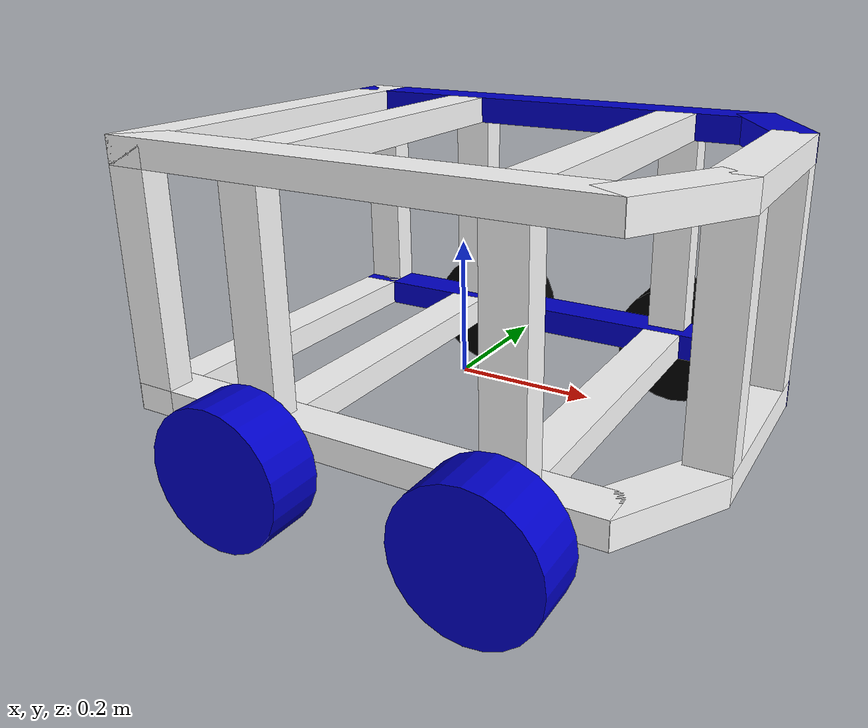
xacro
<?xml version="1.0"?>
<robot xmlns:xacro="http://www.ros.org/wiki/xacro"  name="GUELADAN">

    <xacro:include filename="chassis.urdf.xacro" />
    <xacro:include filename="chassis_top.urdf.xacro" />
    <xacro:include filename="chassis_bar.urdf.xacro" />
	<gazebo>
		<plugin name="gazebo_ros_control" filename="libgazebo_ros_control.so">
		  <robotNamespace>/</robotNamespace>
		</plugin>
	</gazebo>

</robot>

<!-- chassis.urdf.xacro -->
<robot xmlns:xacro="http://www.ros.org/wiki/xacro">

<xacro:include filename="inertial_macros.xacro"/>

  <material name="blue">
    <color rgba="0 0 0.8 1"/>
  </material>
  <material name="black">
    <color rgba="0 0 0 1"/>
  </material>
  <material name="white">
    <color rgba="1 1 1 1"/>
  </material>

<link name="base_link"></link>

<joint name="base_join" type="fixed">
    <parent link="base_link"/>
    <child link="chassis_link_back"/>
    <origin rpy="0 0 0" xyz="-0.325 0 0"/>
</joint>

  <link name="chassis_link_back">
    <visual>
      <geometry>
        <box size="0.06 0.6 0.04"/>
      </geometry>
      <origin rpy="0 0 0" xyz="0 0 0"/>
      <material name="white"/>
    </visual>
    <collision>
        <geometry>
            <box size="0.06 0.6 0.04"/>
        </geometry>
        <origin rpy="0 0 0" xyz="0 0 0"/>
    </collision>
    <xacro:inertial_box mass="1.8" x="0.06" y="0.6" z="0.04">
      <origin rpy="0 0 0" xyz="0 0 0"/>
    </xacro:inertial_box>
  </link>

  <joint name="base_link_right_joint" type="fixed">
    <parent link="base_link"/>
    <child link="chassis_link_right"/>
    <origin rpy="0 0 0" xyz="0 -0.27 0"/>
  </joint>

  <joint name="base_link_left_joint" type="fixed">
    <parent link="base_link"/>
    <child link="chassis_link_left"/>
    <origin rpy="0 0 0" xyz="0 0.27 0"/>
  </joint>

  <link name="chassis_link_right">
    <visual>
      <geometry>
        <box size="0.71 0.06 0.04"/>
      </geometry>
      <origin rpy="0 0 0" xyz="0 0 0"/>
      <material name="white"/>
    </visual>

    <collision>
      <geometry>
        <box size="0.71 0.06 0.04"/>
      </geometry>
      <origin rpy="0 0 0" xyz="0 0 0"/>
      <material name="white"/>
    </collision>

    <xacro:inertial_box mass="2.13" x="0.71" y="0.06" z="0.04">
      <origin rpy="0 0 0" xyz="0 0 0"/>
    </xacro:inertial_box>
  </link>

  <link name="chassis_link_left">
    <visual>
      <geometry>
        <box size="0.71 0.06 0.04"/>
      </geometry>
      <origin rpy="0 0 0" xyz="0 0 0"/>
      <material name="blue"/>
    </visual>

    <collision>
      <geometry>
        <box size="0.71 0.06 0.04"/>
      </geometry>
      <origin rpy="0 0 0" xyz="0 0 0"/>
      <material name="blue"/>
    </collision>

    <xacro:inertial_box mass="2.13" x="0.71" y="0.06" z="0.4">
      <origin rpy="0 0 0" xyz="0 0 0"/>
    </xacro:inertial_box>
  </link>

  <joint name="base_link_right_oblic_joint" type="fixed">
    <parent link="base_link"/>
    <child link="chassis_link_right_oblic"/>
    <origin rpy="0 0 -2.11" xyz="0.375 -0.21 0"/>
  </joint>

  <joint name="base_link_left_oblic_joint" type="fixed">
    <parent link="base_link"/>
    <child link="chassis_link_left_oblic"/>
    <origin rpy="0 0 2.11" xyz="0.375 0.21 0"/>
  </joint>

  <joint name="base_link_front_joint" type="fixed">
    <parent link="base_link"/>
    <child link="chassis_link_front"/>
    <origin rpy="0 0 0" xyz="0.415 0 0"/>
  </joint>

  <joint name="chassis_link_2_joint" type="fixed">
    <parent link="base_link"/>
    <child link="chassis_link_2"/>
    <origin rpy="0 0 0" xyz="0.2254 0 0"/>
  </joint>

  <joint name="chassis_link_1_joint" type="fixed">
    <parent link="base_link"/>
    <child link="chassis_link_1"/>
    <origin rpy="0 0 0" xyz="-0.1346 0 0"/>
  </joint>

  <link name="chassis_link_left_oblic">
    <visual>
      <geometry>
        <box size="0.175 0.06 0.04"/>
      </geometry>
      <origin rpy="0 0 0" xyz="0 0 0"/>
      <material name="blue"/>
    </visual>

    <collision>
      <geometry>
        <box size="0.175 0.06 0.04"/>
      </geometry>
      <origin rpy="0 0 0" xyz="0 0 0"/>
      <material name="blue"/>
    </collision>

    <xacro:inertial_box mass="0.525" x="0.175" y="0.06" z="0.04">
      <origin rpy="0 0 0" xyz="0 0 0"/>
    </xacro:inertial_box>
  </link>

  <link name="chassis_link_right_oblic">
    <visual>
      <geometry>
        <box size="0.175 0.06 0.04"/>
      </geometry>
      <origin rpy="0 0 0" xyz="0 0 0"/>
      <material name="white"/>
    </visual>

    <collision>
      <geometry>
        <box size="0.175 0.06 0.04"/>
      </geometry>
      <origin rpy="0 0 0" xyz="0 0 0"/>
      <material name="white"/>
    </collision>

    <xacro:inertial_box mass="0.525" x="0.175" y="0.06" z="0.4">
      <origin rpy="0 0 0" xyz="0 0 0"/>
    </xacro:inertial_box>
  </link>

  <link name="chassis_link_front">
    <visual>
      <geometry>
        <box size="0.06 0.3 0.04"/>
      </geometry>
      <origin rpy="0 0 0" xyz="0 0 0"/>
      <material name="white"/>
    </visual>

    <collision>
      <geometry>
        <box size="0.06 0.3 0.04"/>
      </geometry>
      <origin rpy="0 0 0" xyz="0 0 0"/>
      <material name="white"/>
    </collision>

    <xacro:inertial_box mass="0.9" x="0.06" y="0.3" z="0.04">
      <origin rpy="0 0 0" xyz="0 0 0"/>
    </xacro:inertial_box>
  </link>

  <link name="chassis_link_1">
    <visual>
      <geometry>
        <box size="0.06 0.48 0.04"/>
      </geometry>
      <origin rpy="0 0 0" xyz="0 0 0"/>
      <material name="white"/>
    </visual>

    <collision>
      <geometry>
        <box size="0.06 0.48 0.04"/>
      </geometry>
      <origin rpy="0 0 0" xyz="0 0 0"/>
      <material name="white"/>
    </collision>

     <xacro:inertial_box mass="0.9" x="0.06" y="0.3" z="0.04">
      <origin rpy="0 0 0" xyz="0 0 0"/>
    </xacro:inertial_box>
  </link>

  <link name="chassis_link_2">
    <visual>
      <geometry>
        <box size="0.06 0.48 0.04"/>
      </geometry>
      <origin rpy="0 0 0" xyz="0 0 0"/>
      <material name="white"/>
    </visual>

    <collision>
      <geometry>
        <box size="0.06 0.48 0.04"/>
      </geometry>
      <origin rpy="0 0 0" xyz="0 0 0"/>
      <material name="white"/>
    </collision>

     <xacro:inertial_box mass="0.9" x="0.06" y="0.3" z="0.04">
      <origin rpy="0 0 0" xyz="0 0 0"/>
    </xacro:inertial_box>
  </link>

      <link name="back_left_wheel">
        <visual>
            <geometry>
                <cylinder length="0.08" radius="0.1"/>
            </geometry>
            <origin rpy="0 0 0" xyz="0 0 0"/>
            <material name="black"/>
        </visual>

        <collision>
            <geometry>
                <cylinder length="0.08" radius="0.1"/>
            </geometry>
            <origin rpy="0 0 0" xyz="0 0 0"/>
            <material name="black"/>
        </collision>

        <xacro:inertial_cylinder mass="0.5" length="0.08" radius="0.01">
            <origin xyz="0 0 0" rpy="0 0 0"/>
        </xacro:inertial_cylinder>
    </link>

    <link name="front_left_wheel">
        <visual>
            <geometry>
                <cylinder length="0.08" radius="0.1"/>
            </geometry>
            <origin rpy="0 0 0" xyz="0 0 0"/>
            <material name="black"/>
        </visual>
        <collision>
            <geometry>
                <cylinder length="0.08" radius="0.1"/>
            </geometry>
            <origin rpy="0 0 0" xyz="0 0 0"/>
            <material name="black"/>
        </collision>
        <xacro:inertial_cylinder mass="0.5" length="0.08" radius="0.01">
            <origin xyz="0 0 0" rpy="0 0 0"/>
        </xacro:inertial_cylinder>
    </link>

    <link name="back_right_wheel">
        <visual>
            <geometry>
                <cylinder length="0.08" radius="0.1"/>
            </geometry>
            <origin rpy="0 0 0" xyz="0 0 0"/>
            <material name="blue"/>
        </visual>
        <collision>
            <geometry>
                <cylinder length="0.08" radius="0.1"/>
            </geometry>
            <origin rpy="0 0 0" xyz="0 0 0"/>
            <material name="blue"/>
        </collision>
        <xacro:inertial_cylinder mass="0.5" length="0.08" radius="0.01">
            <origin xyz="0 0 0" rpy="0 0 0"/>
        </xacro:inertial_cylinder>
    </link>

    <link name="front_right_wheel">
        <visual>
            <geometry>
            <cylinder length="0.08" radius="0.1"/>
            </geometry>
            <origin rpy="0 0 0" xyz="0 0 0"/>
            <material name="blue"/>
        </visual>
        <collision>
            <geometry>
            <cylinder length="0.08" radius="0.1"/>
            </geometry>
            <origin rpy="0 0 0" xyz="0 0 0"/>
            <material name="blue"/>
        </collision>
        <xacro:inertial_cylinder mass="0.5" length="0.08" radius="0.01">
            <origin xyz="0 0 0" rpy="0 0 0"/>
        </xacro:inertial_cylinder>
    </link>

    <joint name="front_right_wheel_joint" type="continuous">
        <parent link="base_link"/>
        <child link="front_right_wheel"/>
        <origin rpy="1.57 0 0" xyz="0.2254 -0.35 -0.03"/>
        <axis xyz="0 0 -1"/>
    </joint>

    <transmission name="front_right_wheel_trans">
      <type>transmission_interface/SimpleTransmission</type>
      <actuator name="front_right_wheel_motor">
        <mechanicalReduction>1</mechanicalReduction>
      </actuator>
      <joint name="front_right_wheel_joint">
        <hardwareInterface>hardware_interface/VelocityJointInterface</hardwareInterface>
      </joint>
    </transmission>

    <joint name="back_right_wheel_joint" type="continuous">
        <parent link="base_link"/>
        <child link="back_right_wheel"/>
        <origin rpy="1.57 0 0" xyz="-0.1346 -0.35 -0.03"/>
        <axis xyz="0 0 -1"/>
    </joint>
    <transmission name="back_right_wheel_trans">
      <type>transmission_interface/SimpleTransmission</type>
      <actuator name="back_right_wheel_motor">
        <mechanicalReduction>1</mechanicalReduction>
      </actuator>
      <joint name="back_right_wheel_joint">
        <hardwareInterface>hardware_interface/VelocityJointInterface</hardwareInterface>
      </joint>
    </transmission>

    <joint name="front_left_wheel_joint" type="continuous">
        <parent link="base_link"/>
        <child link="front_left_wheel"/>
        <origin rpy="-1.57 0 0" xyz="0.2254 0.35 -0.03"/>
        <axis xyz="0 0 1"/>
    </joint>
    <transmission name="front_left_wheel_trans">
      <type>transmission_interface/SimpleTransmission</type>
      <actuator name="front_left_wheel_motor">
        <mechanicalReduction>1</mechanicalReduction>
      </actuator>
      <joint name="front_left_wheel_joint">
        <hardwareInterface>hardware_interface/VelocityJointInterface</hardwareInterface>
      </joint>
    </transmission>

    <joint name="back_left_wheel_joint" type="continuous">
        <parent link="base_link"/>
        <child link="back_left_wheel"/>
        <origin rpy="-1.57 0 0" xyz="-0.1346 0.35 -0.03"/>
        <axis xyz="0 0 1"/>
    </joint>
    <transmission name="back_left_wheel_trans">
      <type>transmission_interface/SimpleTransmission</type>
      <actuator name="back_left_wheel_motor">
        <mechanicalReduction>1</mechanicalReduction>
      </actuator>
      <joint name="back_left_wheel_joint">
        <hardwareInterface>hardware_interface/VelocityJointInterface</hardwareInterface>
      </joint>
    </transmission>

  <gazebo reference="back_right_wheel">
      <mu1 value="200.0"/>
      <mu2 value="100.0"/>
      <kp value="10000000.0" />
      <kd value="1.0" />
      <material>Gazebo/Grey</material>
  </gazebo>
  <gazebo reference="front_right_wheel">
      <mu1 value="200.0"/>
      <mu2 value="100.0"/>
      <kp value="10000000.0" />
      <kd value="1.0" />
      <material>Gazebo/Grey</material>
  </gazebo>
  <gazebo reference="front_left_wheel">
      <mu1 value="200.0"/>
      <mu2 value="100.0"/>
      <kp value="10000000.0" />
      <kd value="1.0" />
      <material>Gazebo/Grey</material>
  </gazebo>
  <gazebo reference="back_left_wheel">
      <mu1 value="200.0"/>
      <mu2 value="100.0"/>
      <kp value="10000000.0" />
      <kd value="1.0" />
      <material>Gazebo/Grey</material>
  </gazebo>

</robot>

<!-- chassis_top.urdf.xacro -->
<robot xmlns:xacro="http://www.ros.org/wiki/xacro">

<xacro:include filename="inertial_macros.xacro"/>

<xacro:property name="robot_height" value="0.35" />

<joint name="base_top_join" type="fixed">
    <parent link="base_link"/>
    <child link="base_link_top"/>
    <origin rpy="0 0 0" xyz="0 0 ${robot_height}"/>
</joint>
<link name="base_link_top"></link>

<joint name="base_chassis_top_join" type="fixed">
    <parent link="base_link_top"/>
    <child link="chassis_top_link_back"/>
    <origin rpy="0 0 0" xyz="-0.325 0 0"/>
</joint>

  <link name="chassis_top_link_back">
    <visual>
      <geometry>
        <box size="0.06 0.6 0.04"/>
      </geometry>
      <origin rpy="0 0 0" xyz="0 0 0"/>
      <material name="white"/>
    </visual>
    <collision>
        <geometry>
            <box size="0.06 0.6 0.04"/>
        </geometry>
        <origin rpy="0 0 0" xyz="0 0 0"/>
    </collision>
    <xacro:inertial_box mass="1.8" x="0.06" y="0.6" z="0.04">
      <origin rpy="0 0 0" xyz="0 0 0"/>
    </xacro:inertial_box>
  </link>

  <joint name="base_link_top_right_joint" type="fixed">
    <parent link="base_link_top"/>
    <child link="chassis_top_link_right"/>
    <origin rpy="0 0 0" xyz="0 -0.27 0"/>
  </joint>

  <joint name="base_link_top_left_joint" type="fixed">
    <parent link="base_link_top"/>
    <child link="chassis_top_link_left"/>
    <origin rpy="0 0 0" xyz="0 0.27 0"/>
  </joint>

  <link name="chassis_top_link_right">
    <visual>
      <geometry>
        <box size="0.71 0.06 0.04"/>
      </geometry>
      <origin rpy="0 0 0" xyz="0 0 0"/>
      <material name="white"/>
    </visual>

    <collision>
      <geometry>
        <box size="0.71 0.06 0.04"/>
      </geometry>
      <origin rpy="0 0 0" xyz="0 0 0"/>
      <material name="white"/>
    </collision>

    <xacro:inertial_box mass="2.13" x="0.71" y="0.06" z="0.04">
      <origin rpy="0 0 0" xyz="0 0 0"/>
    </xacro:inertial_box>
  </link>

  <link name="chassis_top_link_left">
    <visual>
      <geometry>
        <box size="0.71 0.06 0.04"/>
      </geometry>
      <origin rpy="0 0 0" xyz="0 0 0"/>
      <material name="blue"/>
    </visual>

    <collision>
      <geometry>
        <box size="0.71 0.06 0.04"/>
      </geometry>
      <origin rpy="0 0 0" xyz="0 0 0"/>
      <material name="blue"/>
    </collision>

    <xacro:inertial_box mass="2.13" x="0.71" y="0.06" z="0.4">
      <origin rpy="0 0 0" xyz="0 0 0"/>
    </xacro:inertial_box>
  </link>

  <joint name="base_link_top_right_oblic_joint" type="fixed">
    <parent link="base_link_top"/>
    <child link="chassis_top_link_right_oblic"/>
    <origin rpy="0 0 -2.11" xyz="0.375 -0.21 0"/>
  </joint>

  <joint name="base_link_top_left_oblic_joint" type="fixed">
    <parent link="base_link_top"/>
    <child link="chassis_top_link_left_oblic"/>
    <origin rpy="0 0 2.11" xyz="0.375 0.21 0"/>
  </joint>

  <joint name="base_link_top_front_joint" type="fixed">
    <parent link="base_link_top"/>
    <child link="chassis_top_link_front"/>
    <origin rpy="0 0 0" xyz="0.415 0 0"/>
  </joint>

  <joint name="chassis_top_link_2_joint" type="fixed">
    <parent link="base_link_top"/>
    <child link="chassis_top_link_2"/>
    <origin rpy="0 0 0" xyz="0.2254 0 0"/>
  </joint>

  <joint name="chassis_top_link_1_joint" type="fixed">
    <parent link="base_link_top"/>
    <child link="chassis_top_link_1"/>
    <origin rpy="0 0 0" xyz="-0.1346 0 0"/>
  </joint>

  <link name="chassis_top_link_left_oblic">
    <visual>
      <geometry>
        <box size="0.175 0.06 0.04"/>
      </geometry>
      <origin rpy="0 0 0" xyz="0 0 0"/>
      <material name="blue"/>
    </visual>

    <collision>
      <geometry>
        <box size="0.175 0.06 0.04"/>
      </geometry>
      <origin rpy="0 0 0" xyz="0 0 0"/>
      <material name="blue"/>
    </collision>

    <xacro:inertial_box mass="0.525" x="0.175" y="0.06" z="0.04">
      <origin rpy="0 0 0" xyz="0 0 0"/>
    </xacro:inertial_box>
  </link>

  <link name="chassis_top_link_right_oblic">
    <visual>
      <geometry>
        <box size="0.175 0.06 0.04"/>
      </geometry>
      <origin rpy="0 0 0" xyz="0 0 0"/>
      <material name="white"/>
    </visual>

    <collision>
      <geometry>
        <box size="0.175 0.06 0.04"/>
      </geometry>
      <origin rpy="0 0 0" xyz="0 0 0"/>
      <material name="white"/>
    </collision>

    <xacro:inertial_box mass="0.525" x="0.175" y="0.06" z="0.4">
      <origin rpy="0 0 0" xyz="0 0 0"/>
    </xacro:inertial_box>
  </link>

  <link name="chassis_top_link_front">
    <visual>
      <geometry>
        <box size="0.06 0.3 0.04"/>
      </geometry>
      <origin rpy="0 0 0" xyz="0 0 0"/>
      <material name="white"/>
    </visual>

    <collision>
      <geometry>
        <box size="0.06 0.3 0.04"/>
      </geometry>
      <origin rpy="0 0 0" xyz="0 0 0"/>
      <material name="white"/>
    </collision>

    <xacro:inertial_box mass="0.9" x="0.06" y="0.3" z="0.04">
      <origin rpy="0 0 0" xyz="0 0 0"/>
    </xacro:inertial_box>
  </link>

  <link name="chassis_top_link_1">
    <visual>
      <geometry>
        <box size="0.06 0.48 0.04"/>
      </geometry>
      <origin rpy="0 0 0" xyz="0 0 0"/>
      <material name="white"/>
    </visual>

    <collision>
      <geometry>
        <box size="0.06 0.48 0.04"/>
      </geometry>
      <origin rpy="0 0 0" xyz="0 0 0"/>
      <material name="white"/>
    </collision>

     <xacro:inertial_box mass="0.9" x="0.06" y="0.3" z="0.04">
      <origin rpy="0 0 0" xyz="0 0 0"/>
    </xacro:inertial_box>
  </link>

  <link name="chassis_top_link_2">
    <visual>
      <geometry>
        <box size="0.06 0.48 0.04"/>
      </geometry>
      <origin rpy="0 0 0" xyz="0 0 0"/>
      <material name="white"/>
    </visual>

    <collision>
      <geometry>
        <box size="0.06 0.48 0.04"/>
      </geometry>
      <origin rpy="0 0 0" xyz="0 0 0"/>
      <material name="white"/>
    </collision>

     <xacro:inertial_box mass="0.9" x="0.06" y="0.3" z="0.04">
      <origin rpy="0 0 0" xyz="0 0 0"/>
    </xacro:inertial_box>
  </link>

  <gazebo>
    <plugin name="gazebo_ros_control" filename="libgazebo_ros_control.so">
      <robotNamespace>/</robotNamespace>
    </plugin>
  </gazebo>

</robot>

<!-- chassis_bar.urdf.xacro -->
<robot xmlns:xacro="http://www.ros.org/wiki/xacro">

	<xacro:include filename="inertial_macros.xacro"/>

	<xacro:property name="robot_height" value="0.35" />

	<xacro:macro name="chassis_bar" params="position_1 position_2 x y z">
		<joint name="base_chassis_bar_${position_1}_${position_2}_joint" type="fixed">
			<parent link="base_bar_link"/>
			<child link="base_chassis_bar_${position_1}_${position_2}"/>
			<origin rpy="0 0 0" xyz="${x} ${y} ${z}"/>
		</joint>

		<link name="base_chassis_bar_${position_1}_${position_2}">
		<visual>
		  <geometry>
			<box size="0.06 0.04 0.31"/>
		  </geometry>
		  <origin rpy="0 0 0" xyz="0 0 0"/>
		  <material name="white"/>
		</visual>
		<collision>
			<geometry>
				<box size="0.06 0.04 0.31"/>
			</geometry>
			<origin rpy="0 0 0" xyz="0 0 0"/>
		</collision>
		<xacro:inertial_box mass="0.93" x="0.06" y="0.04" z="0.31">
		  <origin rpy="0 0 0" xyz="0 0 0"/>
		</xacro:inertial_box>
		</link>
	</xacro:macro>

	<joint name="base_bar_join" type="fixed">
		<parent link="base_link"/>
		<child link="base_bar_link"/>
		<origin rpy="0 0 0" xyz="0 0 ${robot_height/2}"/>
	</joint>
	<link name="base_bar_link"></link>

	<xacro:chassis_bar position_1="front" position_2="left" x="0.415" y="0.13" z="0" />
	<xacro:chassis_bar position_1="front" position_2="right" x="0.415" y="-0.13" z="0" />

	<xacro:chassis_bar position_1="back_2" position_2="left" x="0.2254" y="0.28" z="0" />
	<xacro:chassis_bar position_1="back_2" position_2="right" x="0.2254" y="-0.28" z="0" />

	<xacro:chassis_bar position_1="back_1" position_2="left" x="-0.1346" y="0.28" z="0" />
	<xacro:chassis_bar position_1="back_1" position_2="right" x="-0.1346" y="-0.28" z="0" />

	<xacro:chassis_bar position_1="back" position_2="left" x="-0.325" y="0.28" z="0" />
	<xacro:chassis_bar position_1="back" position_2="right" x="-0.325" y="-0.28" z="0" />
</robot>
